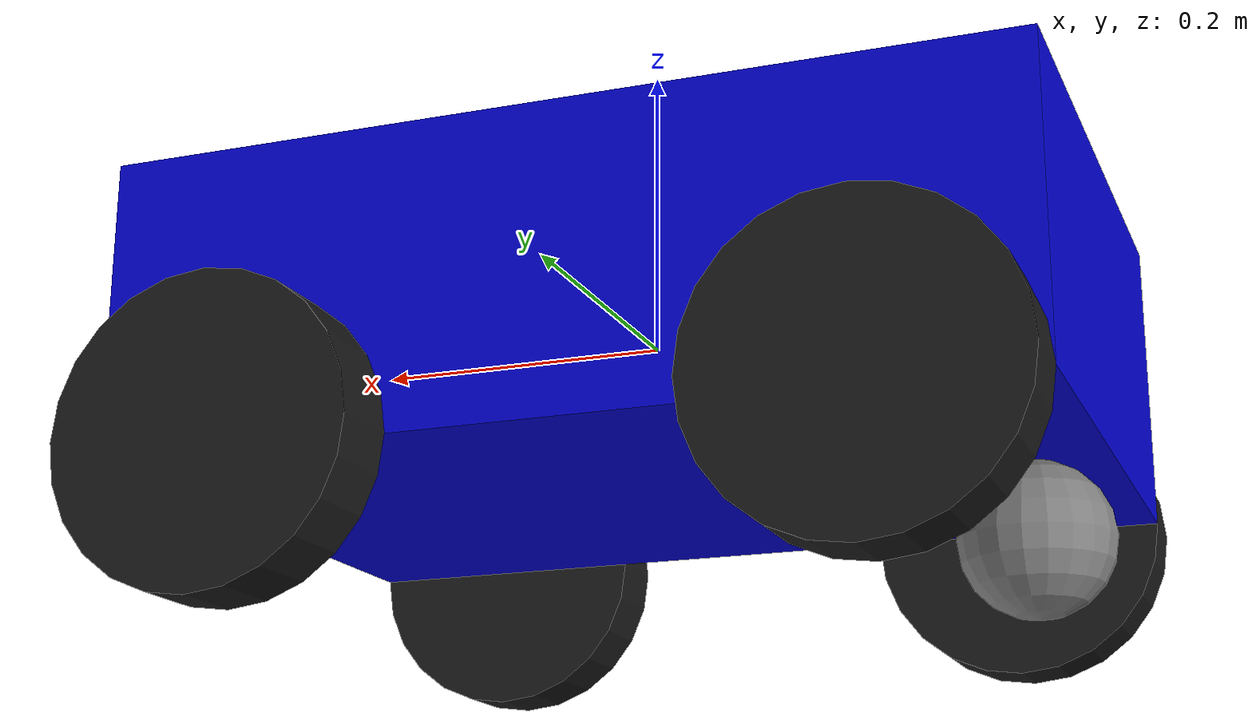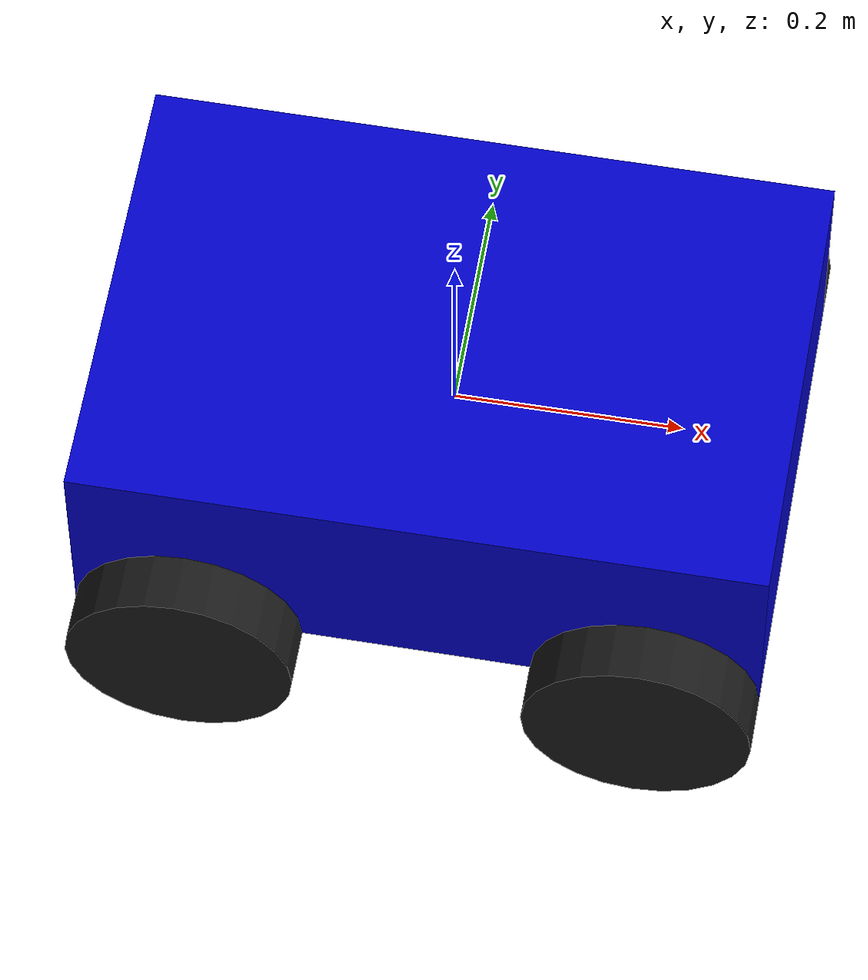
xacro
<?xml version="1.0"?>
<robot name="simple_mobile_robot" xmlns:xacro="http://www.ros.org/wiki/xacro">
  <!-- Properties for easy modification -->
  <xacro:property name="base_width" value="0.4"/>
  <xacro:property name="base_length" value="0.6"/>
  <xacro:property name="base_height" value="0.2"/>
  <xacro:property name="wheel_radius" value="0.1"/>
  <xacro:property name="wheel_width" value="0.05"/>

  <!-- Base link -->
  <link name="base_link">
    <visual>
      <geometry>
        <box size="${base_length} ${base_width} ${base_height}"/>
      </geometry>
      <material name="blue">
        <color rgba="0 0 0.8 1"/>
      </material>
    </visual>
    <collision>
      <geometry>
        <box size="${base_length} ${base_width} ${base_height}"/>
      </geometry>
    </collision>
    <inertial>
      <mass value="10.0"/>
      <inertia ixx="0.133" ixy="0" ixz="0" iyy="0.233" iyz="0" izz="0.3"/>
    </inertial>
  </link>

  <!-- Wheel macro for reusability -->
  <xacro:macro name="wheel" params="prefix x_pos y_pos">
    <link name="${prefix}_wheel">
      <visual>
        <geometry>
          <cylinder radius="${wheel_radius}" length="${wheel_width}"/>
        </geometry>
        <origin xyz="0 0 0" rpy="${pi/2} 0 0"/>
        <material name="black">
          <color rgba="0.1 0.1 0.1 1"/>
        </material>
      </visual>
      <collision>
        <geometry>
          <cylinder radius="${wheel_radius}" length="${wheel_width}"/>
        </geometry>
        <origin xyz="0 0 0" rpy="${pi/2} 0 0"/>
      </collision>
      <inertial>
        <mass value="0.5"/>
        <inertia ixx="0.0013" ixy="0" ixz="0" iyy="0.0013" iyz="0" izz="0.0025"/>
      </inertial>
    </link>

    <joint name="base_to_${prefix}_wheel" type="continuous">
      <parent link="base_link"/>
      <child link="${prefix}_wheel"/>
      <origin xyz="${x_pos} ${y_pos} ${-base_height/2}" rpy="0 0 0"/>
      <axis xyz="0 1 0"/>
      <dynamics damping="0.1" friction="0.1"/>
    </joint>
  </xacro:macro>

  <!-- Instantiate wheels -->
  <xacro:wheel prefix="front_left" x_pos="${base_length/3}" y_pos="${base_width/2 + wheel_width/2}"/>
  <xacro:wheel prefix="front_right" x_pos="${base_length/3}" y_pos="${-base_width/2 - wheel_width/2}"/>
  <xacro:wheel prefix="rear_left" x_pos="${-base_length/3}" y_pos="${base_width/2 + wheel_width/2}"/>
  <xacro:wheel prefix="rear_right" x_pos="${-base_length/3}" y_pos="${-base_width/2 - wheel_width/2}"/>

  <!-- Caster wheel (fixed) -->
  <link name="caster">
    <visual>
      <geometry>
        <sphere radius="${wheel_radius/2}"/>
      </geometry>
      <material name="gray">
        <color rgba="0.5 0.5 0.5 1"/>
      </material>
    </visual>
    <collision>
      <geometry>
        <sphere radius="${wheel_radius/2}"/>
      </geometry>
    </collision>
    <inertial>
      <mass value="0.1"/>
      <inertia ixx="0.0001" ixy="0" ixz="0" iyy="0.0001" iyz="0" izz="0.0001"/>
    </inertial>
  </link>

  <joint name="base_to_caster" type="fixed">
    <parent link="base_link"/>
    <child link="caster"/>
    <origin xyz="${-base_length/2 + wheel_radius/2} 0 ${-base_height/2 - wheel_radius/2}" rpy="0 0 0"/>
  </joint>
</robot>
